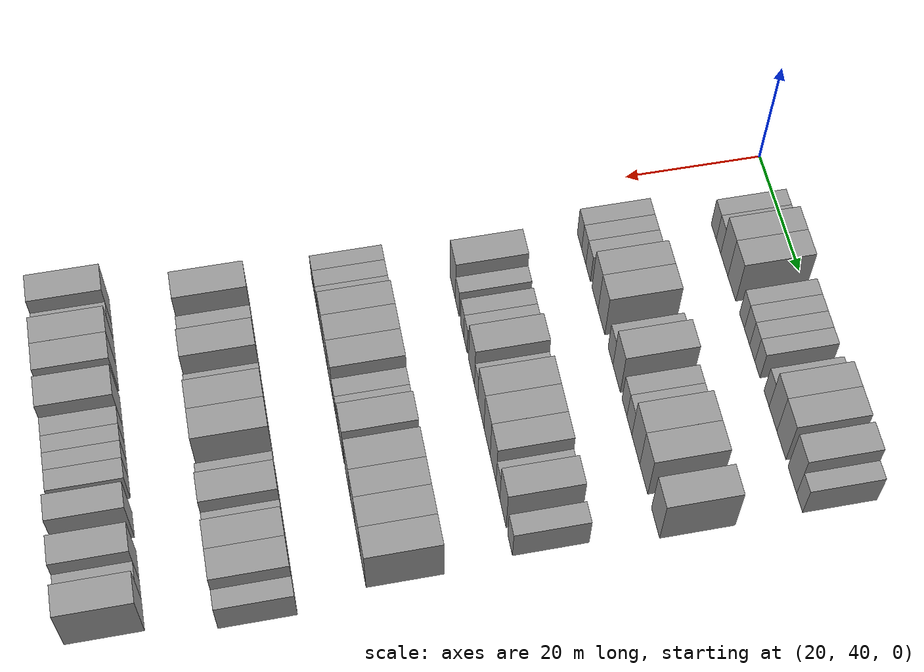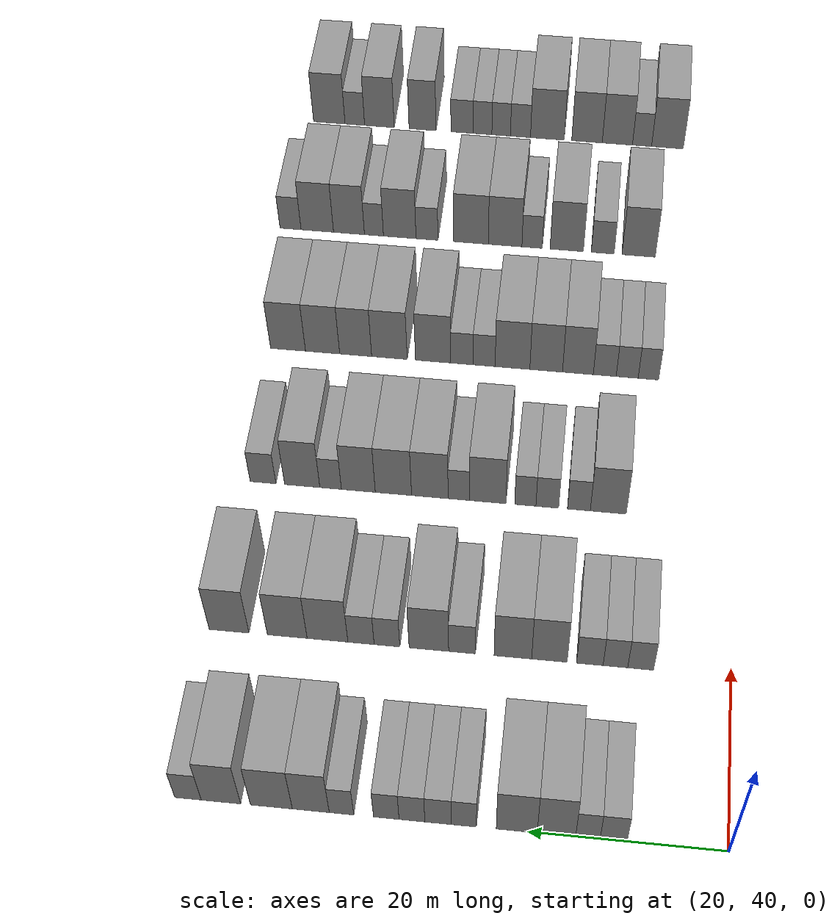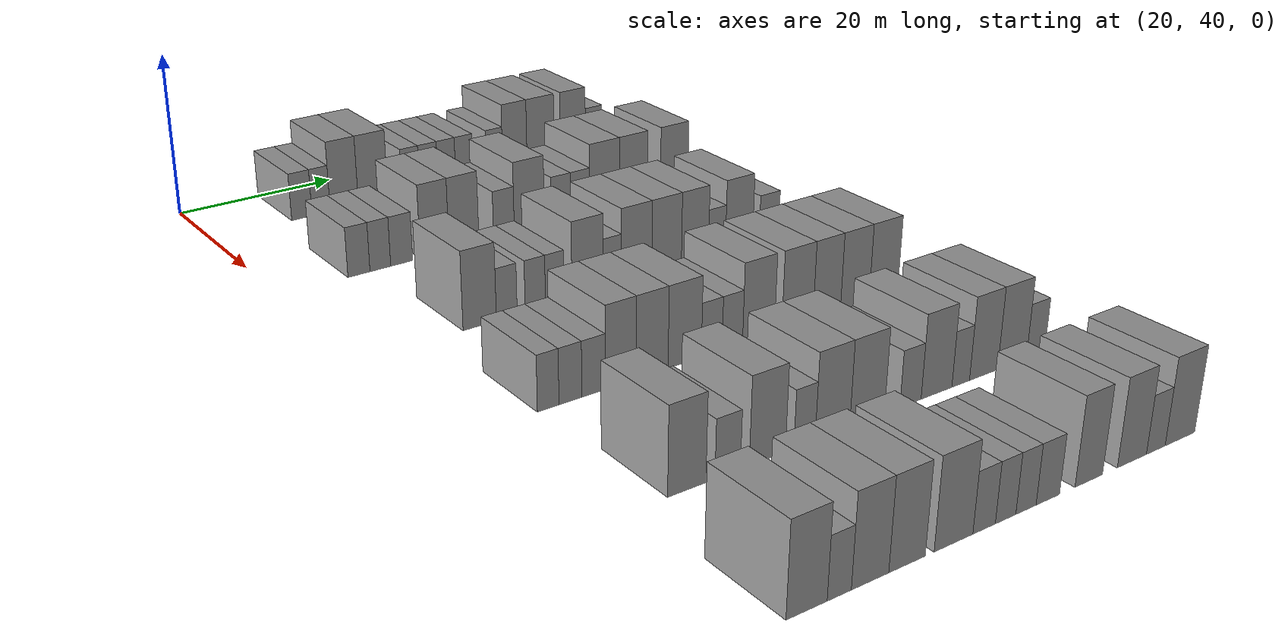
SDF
<sdf version="1.6">
 <world name="default">
  <model name="building_100">
   <static>1</static>
   <pose>25.0000 51.4805 0 0.000000 0.000000 0.000000</pose>
   <link name="link">
    <pose>0 0 3.00 0 0 0</pose>
    <collision name="collision"><geometry><box><size>10.0000 2.6877 6.0000</size></box></geometry></collision>
    <visual name="visual">
     <cast_shadows>0</cast_shadows>
     <geometry><box><size>10.0000 2.6877 6.0000</size></box></geometry>
     <material>
      <script>
       <uri>model://grey_wall/materials/scripts</uri>
       <uri>model://grey_wall/materials/textures</uri>
       <name>vrc/grey_wall</name>
      </script>
     </material>
    </visual>
   </link>
  </model>
  <model name="building_101">
   <static>1</static>
   <pose>25.0000 54.0428 0 0.000000 0.000000 0.000000</pose>
   <link name="link">
    <pose>0 0 3.00 0 0 0</pose>
    <collision name="collision"><geometry><box><size>10.0000 2.4369 6.0000</size></box></geometry></collision>
    <visual name="visual">
     <cast_shadows>0</cast_shadows>
     <geometry><box><size>10.0000 2.4369 6.0000</size></box></geometry>
     <material>
      <script>
       <uri>model://grey_wall/materials/scripts</uri>
       <uri>model://grey_wall/materials/textures</uri>
       <name>vrc/grey_wall</name>
      </script>
     </material>
    </visual>
   </link>
  </model>
  <model name="building_102">
   <static>1</static>
   <pose>25.0000 57.1786 0 0.000000 0.000000 0.000000</pose>
   <link name="link">
    <pose>0 0 4.50 0 0 0</pose>
    <collision name="collision"><geometry><box><size>10.0000 3.8346 9.0000</size></box></geometry></collision>
    <visual name="visual">
     <cast_shadows>0</cast_shadows>
     <geometry><box><size>10.0000 3.8346 9.0000</size></box></geometry>
     <material>
      <script>
       <uri>model://grey_wall/materials/scripts</uri>
       <uri>model://grey_wall/materials/textures</uri>
       <name>vrc/grey_wall</name>
      </script>
     </material>
    </visual>
   </link>
  </model>
  <model name="building_103">
   <static>1</static>
   <pose>25.0000 61.1463 0 0.000000 0.000000 0.000000</pose>
   <link name="link">
    <pose>0 0 4.50 0 0 0</pose>
    <collision name="collision"><geometry><box><size>10.0000 4.1008 9.0000</size></box></geometry></collision>
    <visual name="visual">
     <cast_shadows>0</cast_shadows>
     <geometry><box><size>10.0000 4.1008 9.0000</size></box></geometry>
     <material>
      <script>
       <uri>model://grey_wall/materials/scripts</uri>
       <uri>model://grey_wall/materials/textures</uri>
       <name>vrc/grey_wall</name>
      </script>
     </material>
    </visual>
   </link>
  </model>
  <model name="building_104">
   <static>1</static>
   <pose>25.0000 66.4457 0 0.000000 0.000000 0.000000</pose>
   <link name="link">
    <pose>0 0 3.00 0 0 0</pose>
    <collision name="collision"><geometry><box><size>10.0000 2.4981 6.0000</size></box></geometry></collision>
    <visual name="visual">
     <cast_shadows>0</cast_shadows>
     <geometry><box><size>10.0000 2.4981 6.0000</size></box></geometry>
     <material>
      <script>
       <uri>model://grey_wall/materials/scripts</uri>
       <uri>model://grey_wall/materials/textures</uri>
       <name>vrc/grey_wall</name>
      </script>
     </material>
    </visual>
   </link>
  </model>
  <model name="building_105">
   <static>1</static>
   <pose>25.0000 69.0365 0 0.000000 0.000000 0.000000</pose>
   <link name="link">
    <pose>0 0 3.00 0 0 0</pose>
    <collision name="collision"><geometry><box><size>10.0000 2.6834 6.0000</size></box></geometry></collision>
    <visual name="visual">
     <cast_shadows>0</cast_shadows>
     <geometry><box><size>10.0000 2.6834 6.0000</size></box></geometry>
     <material>
      <script>
       <uri>model://grey_wall/materials/scripts</uri>
       <uri>model://grey_wall/materials/textures</uri>
       <name>vrc/grey_wall</name>
      </script>
     </material>
    </visual>
   </link>
  </model>
  <model name="building_106">
   <static>1</static>
   <pose>25.0000 71.6775 0 0.000000 0.000000 0.000000</pose>
   <link name="link">
    <pose>0 0 3.00 0 0 0</pose>
    <collision name="collision"><geometry><box><size>10.0000 2.5985 6.0000</size></box></geometry></collision>
    <visual name="visual">
     <cast_shadows>0</cast_shadows>
     <geometry><box><size>10.0000 2.5985 6.0000</size></box></geometry>
     <material>
      <script>
       <uri>model://grey_wall/materials/scripts</uri>
       <uri>model://grey_wall/materials/textures</uri>
       <name>vrc/grey_wall</name>
      </script>
     </material>
    </visual>
   </link>
  </model>
  <model name="building_107">
   <static>1</static>
   <pose>25.0000 74.2675 0 0.000000 0.000000 0.000000</pose>
   <link name="link">
    <pose>0 0 3.00 0 0 0</pose>
    <collision name="collision"><geometry><box><size>10.0000 2.5816 6.0000</size></box></geometry></collision>
    <visual name="visual">
     <cast_shadows>0</cast_shadows>
     <geometry><box><size>10.0000 2.5816 6.0000</size></box></geometry>
     <material>
      <script>
       <uri>model://grey_wall/materials/scripts</uri>
       <uri>model://grey_wall/materials/textures</uri>
       <name>vrc/grey_wall</name>
      </script>
     </material>
    </visual>
   </link>
  </model>
  <model name="building_108">
   <static>1</static>
   <pose>25.0000 78.8014 0 0.000000 0.000000 0.000000</pose>
   <link name="link">
    <pose>0 0 3.00 0 0 0</pose>
    <collision name="collision"><geometry><box><size>10.0000 2.4861 6.0000</size></box></geometry></collision>
    <visual name="visual">
     <cast_shadows>0</cast_shadows>
     <geometry><box><size>10.0000 2.4861 6.0000</size></box></geometry>
     <material>
      <script>
       <uri>model://grey_wall/materials/scripts</uri>
       <uri>model://grey_wall/materials/textures</uri>
       <name>vrc/grey_wall</name>
      </script>
     </material>
    </visual>
   </link>
  </model>
  <model name="building_109">
   <static>1</static>
   <pose>25.0000 81.9229 0 0.000000 0.000000 0.000000</pose>
   <link name="link">
    <pose>0 0 4.50 0 0 0</pose>
    <collision name="collision"><geometry><box><size>10.0000 3.7568 9.0000</size></box></geometry></collision>
    <visual name="visual">
     <cast_shadows>0</cast_shadows>
     <geometry><box><size>10.0000 3.7568 9.0000</size></box></geometry>
     <material>
      <script>
       <uri>model://grey_wall/materials/scripts</uri>
       <uri>model://grey_wall/materials/textures</uri>
       <name>vrc/grey_wall</name>
      </script>
     </material>
    </visual>
   </link>
  </model>
  <model name="building_110">
   <static>1</static>
   <pose>25.0000 85.9373 0 0.000000 0.000000 0.000000</pose>
   <link name="link">
    <pose>0 0 4.50 0 0 0</pose>
    <collision name="collision"><geometry><box><size>10.0000 4.2720 9.0000</size></box></geometry></collision>
    <visual name="visual">
     <cast_shadows>0</cast_shadows>
     <geometry><box><size>10.0000 4.2720 9.0000</size></box></geometry>
     <material>
      <script>
       <uri>model://grey_wall/materials/scripts</uri>
       <uri>model://grey_wall/materials/textures</uri>
       <name>vrc/grey_wall</name>
      </script>
     </material>
    </visual>
   </link>
  </model>
  <model name="building_111">
   <static>1</static>
   <pose>25.0000 91.0894 0 0.000000 0.000000 0.000000</pose>
   <link name="link">
    <pose>0 0 4.50 0 0 0</pose>
    <collision name="collision"><geometry><box><size>10.0000 4.0320 9.0000</size></box></geometry></collision>
    <visual name="visual">
     <cast_shadows>0</cast_shadows>
     <geometry><box><size>10.0000 4.0320 9.0000</size></box></geometry>
     <material>
      <script>
       <uri>model://grey_wall/materials/scripts</uri>
       <uri>model://grey_wall/materials/textures</uri>
       <name>vrc/grey_wall</name>
      </script>
     </material>
    </visual>
   </link>
  </model>
  <model name="building_112">
   <static>1</static>
   <pose>25.0000 94.4571 0 0.000000 0.000000 0.000000</pose>
   <link name="link">
    <pose>0 0 3.00 0 0 0</pose>
    <collision name="collision"><geometry><box><size>10.0000 2.7035 6.0000</size></box></geometry></collision>
    <visual name="visual">
     <cast_shadows>0</cast_shadows>
     <geometry><box><size>10.0000 2.7035 6.0000</size></box></geometry>
     <material>
      <script>
       <uri>model://grey_wall/materials/scripts</uri>
       <uri>model://grey_wall/materials/textures</uri>
       <name>vrc/grey_wall</name>
      </script>
     </material>
    </visual>
   </link>
  </model>
  <model name="building_279">
   <static>1</static>
   <pose>44.0000 49.5673 0 0.000000 0.000000 0.000000</pose>
   <link name="link">
    <pose>0 0 3.00 0 0 0</pose>
    <collision name="collision"><geometry><box><size>10.0000 2.7394 6.0000</size></box></geometry></collision>
    <visual name="visual">
     <cast_shadows>0</cast_shadows>
     <geometry><box><size>10.0000 2.7394 6.0000</size></box></geometry>
     <material>
      <script>
       <uri>model://grey_wall/materials/scripts</uri>
       <uri>model://grey_wall/materials/textures</uri>
       <name>vrc/grey_wall</name>
      </script>
     </material>
    </visual>
   </link>
  </model>
  <model name="building_280">
   <static>1</static>
   <pose>44.0000 52.2454 0 0.000000 0.000000 0.000000</pose>
   <link name="link">
    <pose>0 0 3.00 0 0 0</pose>
    <collision name="collision"><geometry><box><size>10.0000 2.6169 6.0000</size></box></geometry></collision>
    <visual name="visual">
     <cast_shadows>0</cast_shadows>
     <geometry><box><size>10.0000 2.6169 6.0000</size></box></geometry>
     <material>
      <script>
       <uri>model://grey_wall/materials/scripts</uri>
       <uri>model://grey_wall/materials/textures</uri>
       <name>vrc/grey_wall</name>
      </script>
     </material>
    </visual>
   </link>
  </model>
  <model name="building_281">
   <static>1</static>
   <pose>44.0000 54.9629 0 0.000000 0.000000 0.000000</pose>
   <link name="link">
    <pose>0 0 3.00 0 0 0</pose>
    <collision name="collision"><geometry><box><size>10.0000 2.8182 6.0000</size></box></geometry></collision>
    <visual name="visual">
     <cast_shadows>0</cast_shadows>
     <geometry><box><size>10.0000 2.8182 6.0000</size></box></geometry>
     <material>
      <script>
       <uri>model://grey_wall/materials/scripts</uri>
       <uri>model://grey_wall/materials/textures</uri>
       <name>vrc/grey_wall</name>
      </script>
     </material>
    </visual>
   </link>
  </model>
  <model name="building_282">
   <static>1</static>
   <pose>44.0000 59.2622 0 0.000000 0.000000 0.000000</pose>
   <link name="link">
    <pose>0 0 4.50 0 0 0</pose>
    <collision name="collision"><geometry><box><size>10.0000 3.7804 9.0000</size></box></geometry></collision>
    <visual name="visual">
     <cast_shadows>0</cast_shadows>
     <geometry><box><size>10.0000 3.7804 9.0000</size></box></geometry>
     <material>
      <script>
       <uri>model://grey_wall/materials/scripts</uri>
       <uri>model://grey_wall/materials/textures</uri>
       <name>vrc/grey_wall</name>
      </script>
     </material>
    </visual>
   </link>
  </model>
  <model name="building_283">
   <static>1</static>
   <pose>44.0000 63.1566 0 0.000000 0.000000 0.000000</pose>
   <link name="link">
    <pose>0 0 4.50 0 0 0</pose>
    <collision name="collision"><geometry><box><size>10.0000 4.0084 9.0000</size></box></geometry></collision>
    <visual name="visual">
     <cast_shadows>0</cast_shadows>
     <geometry><box><size>10.0000 4.0084 9.0000</size></box></geometry>
     <material>
      <script>
       <uri>model://grey_wall/materials/scripts</uri>
       <uri>model://grey_wall/materials/textures</uri>
       <name>vrc/grey_wall</name>
      </script>
     </material>
    </visual>
   </link>
  </model>
  <model name="building_284">
   <static>1</static>
   <pose>44.0000 68.5951 0 0.000000 0.000000 0.000000</pose>
   <link name="link">
    <pose>0 0 3.00 0 0 0</pose>
    <collision name="collision"><geometry><box><size>10.0000 2.8685 6.0000</size></box></geometry></collision>
    <visual name="visual">
     <cast_shadows>0</cast_shadows>
     <geometry><box><size>10.0000 2.8685 6.0000</size></box></geometry>
     <material>
      <script>
       <uri>model://grey_wall/materials/scripts</uri>
       <uri>model://grey_wall/materials/textures</uri>
       <name>vrc/grey_wall</name>
      </script>
     </material>
    </visual>
   </link>
  </model>
  <model name="building_285">
   <static>1</static>
   <pose>44.0000 72.1524 0 0.000000 0.000000 0.000000</pose>
   <link name="link">
    <pose>0 0 4.50 0 0 0</pose>
    <collision name="collision"><geometry><box><size>10.0000 4.2460 9.0000</size></box></geometry></collision>
    <visual name="visual">
     <cast_shadows>0</cast_shadows>
     <geometry><box><size>10.0000 4.2460 9.0000</size></box></geometry>
     <material>
      <script>
       <uri>model://grey_wall/materials/scripts</uri>
       <uri>model://grey_wall/materials/textures</uri>
       <name>vrc/grey_wall</name>
      </script>
     </material>
    </visual>
   </link>
  </model>
  <model name="building_286">
   <static>1</static>
   <pose>44.0000 76.6606 0 0.000000 0.000000 0.000000</pose>
   <link name="link">
    <pose>0 0 3.00 0 0 0</pose>
    <collision name="collision"><geometry><box><size>10.0000 2.7705 6.0000</size></box></geometry></collision>
    <visual name="visual">
     <cast_shadows>0</cast_shadows>
     <geometry><box><size>10.0000 2.7705 6.0000</size></box></geometry>
     <material>
      <script>
       <uri>model://grey_wall/materials/scripts</uri>
       <uri>model://grey_wall/materials/textures</uri>
       <name>vrc/grey_wall</name>
      </script>
     </material>
    </visual>
   </link>
  </model>
  <model name="building_287">
   <static>1</static>
   <pose>44.0000 79.4630 0 0.000000 0.000000 0.000000</pose>
   <link name="link">
    <pose>0 0 3.00 0 0 0</pose>
    <collision name="collision"><geometry><box><size>10.0000 2.8343 6.0000</size></box></geometry></collision>
    <visual name="visual">
     <cast_shadows>0</cast_shadows>
     <geometry><box><size>10.0000 2.8343 6.0000</size></box></geometry>
     <material>
      <script>
       <uri>model://grey_wall/materials/scripts</uri>
       <uri>model://grey_wall/materials/textures</uri>
       <name>vrc/grey_wall</name>
      </script>
     </material>
    </visual>
   </link>
  </model>
  <model name="building_288">
   <static>1</static>
   <pose>44.0000 83.0851 0 0.000000 0.000000 0.000000</pose>
   <link name="link">
    <pose>0 0 4.50 0 0 0</pose>
    <collision name="collision"><geometry><box><size>10.0000 4.4100 9.0000</size></box></geometry></collision>
    <visual name="visual">
     <cast_shadows>0</cast_shadows>
     <geometry><box><size>10.0000 4.4100 9.0000</size></box></geometry>
     <material>
      <script>
       <uri>model://grey_wall/materials/scripts</uri>
       <uri>model://grey_wall/materials/textures</uri>
       <name>vrc/grey_wall</name>
      </script>
     </material>
    </visual>
   </link>
  </model>
  <model name="building_289">
   <static>1</static>
   <pose>44.0000 87.4494 0 0.000000 0.000000 0.000000</pose>
   <link name="link">
    <pose>0 0 4.50 0 0 0</pose>
    <collision name="collision"><geometry><box><size>10.0000 4.3185 9.0000</size></box></geometry></collision>
    <visual name="visual">
     <cast_shadows>0</cast_shadows>
     <geometry><box><size>10.0000 4.3185 9.0000</size></box></geometry>
     <material>
      <script>
       <uri>model://grey_wall/materials/scripts</uri>
       <uri>model://grey_wall/materials/textures</uri>
       <name>vrc/grey_wall</name>
      </script>
     </material>
    </visual>
   </link>
  </model>
  <model name="building_290">
   <static>1</static>
   <pose>44.0000 93.7740 0 0.000000 0.000000 0.000000</pose>
   <link name="link">
    <pose>0 0 4.50 0 0 0</pose>
    <collision name="collision"><geometry><box><size>10.0000 4.3306 9.0000</size></box></geometry></collision>
    <visual name="visual">
     <cast_shadows>0</cast_shadows>
     <geometry><box><size>10.0000 4.3306 9.0000</size></box></geometry>
     <material>
      <script>
       <uri>model://grey_wall/materials/scripts</uri>
       <uri>model://grey_wall/materials/textures</uri>
       <name>vrc/grey_wall</name>
      </script>
     </material>
    </visual>
   </link>
  </model>
  <model name="building_454">
   <static>1</static>
   <pose>63.0000 53.9962 0 0.000000 0.000000 0.000000</pose>
   <link name="link">
    <pose>0 0 4.50 0 0 0</pose>
    <collision name="collision"><geometry><box><size>10.0000 4.0564 9.0000</size></box></geometry></collision>
    <visual name="visual">
     <cast_shadows>0</cast_shadows>
     <geometry><box><size>10.0000 4.0564 9.0000</size></box></geometry>
     <material>
      <script>
       <uri>model://grey_wall/materials/scripts</uri>
       <uri>model://grey_wall/materials/textures</uri>
       <name>vrc/grey_wall</name>
      </script>
     </material>
    </visual>
   </link>
  </model>
  <model name="building_455">
   <static>1</static>
   <pose>63.0000 57.3100 0 0.000000 0.000000 0.000000</pose>
   <link name="link">
    <pose>0 0 3.00 0 0 0</pose>
    <collision name="collision"><geometry><box><size>10.0000 2.5714 6.0000</size></box></geometry></collision>
    <visual name="visual">
     <cast_shadows>0</cast_shadows>
     <geometry><box><size>10.0000 2.5714 6.0000</size></box></geometry>
     <material>
      <script>
       <uri>model://grey_wall/materials/scripts</uri>
       <uri>model://grey_wall/materials/textures</uri>
       <name>vrc/grey_wall</name>
      </script>
     </material>
    </visual>
   </link>
  </model>
  <model name="building_456">
   <static>1</static>
   <pose>63.0000 60.8809 0 0.000000 0.000000 0.000000</pose>
   <link name="link">
    <pose>0 0 3.00 0 0 0</pose>
    <collision name="collision"><geometry><box><size>10.0000 2.5704 6.0000</size></box></geometry></collision>
    <visual name="visual">
     <cast_shadows>0</cast_shadows>
     <geometry><box><size>10.0000 2.5704 6.0000</size></box></geometry>
     <material>
      <script>
       <uri>model://grey_wall/materials/scripts</uri>
       <uri>model://grey_wall/materials/textures</uri>
       <name>vrc/grey_wall</name>
      </script>
     </material>
    </visual>
   </link>
  </model>
  <model name="building_457">
   <static>1</static>
   <pose>63.0000 63.3690 0 0.000000 0.000000 0.000000</pose>
   <link name="link">
    <pose>0 0 3.00 0 0 0</pose>
    <collision name="collision"><geometry><box><size>10.0000 2.4057 6.0000</size></box></geometry></collision>
    <visual name="visual">
     <cast_shadows>0</cast_shadows>
     <geometry><box><size>10.0000 2.4057 6.0000</size></box></geometry>
     <material>
      <script>
       <uri>model://grey_wall/materials/scripts</uri>
       <uri>model://grey_wall/materials/textures</uri>
       <name>vrc/grey_wall</name>
      </script>
     </material>
    </visual>
   </link>
  </model>
  <model name="building_458">
   <static>1</static>
   <pose>63.0000 67.6503 0 0.000000 0.000000 0.000000</pose>
   <link name="link">
    <pose>0 0 4.50 0 0 0</pose>
    <collision name="collision"><geometry><box><size>10.0000 4.1570 9.0000</size></box></geometry></collision>
    <visual name="visual">
     <cast_shadows>0</cast_shadows>
     <geometry><box><size>10.0000 4.1570 9.0000</size></box></geometry>
     <material>
      <script>
       <uri>model://grey_wall/materials/scripts</uri>
       <uri>model://grey_wall/materials/textures</uri>
       <name>vrc/grey_wall</name>
      </script>
     </material>
    </visual>
   </link>
  </model>
  <model name="building_459">
   <static>1</static>
   <pose>63.0000 70.9305 0 0.000000 0.000000 0.000000</pose>
   <link name="link">
    <pose>0 0 3.00 0 0 0</pose>
    <collision name="collision"><geometry><box><size>10.0000 2.4033 6.0000</size></box></geometry></collision>
    <visual name="visual">
     <cast_shadows>0</cast_shadows>
     <geometry><box><size>10.0000 2.4033 6.0000</size></box></geometry>
     <material>
      <script>
       <uri>model://grey_wall/materials/scripts</uri>
       <uri>model://grey_wall/materials/textures</uri>
       <name>vrc/grey_wall</name>
      </script>
     </material>
    </visual>
   </link>
  </model>
  <model name="building_460">
   <static>1</static>
   <pose>63.0000 74.2197 0 0.000000 0.000000 0.000000</pose>
   <link name="link">
    <pose>0 0 4.50 0 0 0</pose>
    <collision name="collision"><geometry><box><size>10.0000 4.1751 9.0000</size></box></geometry></collision>
    <visual name="visual">
     <cast_shadows>0</cast_shadows>
     <geometry><box><size>10.0000 4.1751 9.0000</size></box></geometry>
     <material>
      <script>
       <uri>model://grey_wall/materials/scripts</uri>
       <uri>model://grey_wall/materials/textures</uri>
       <name>vrc/grey_wall</name>
      </script>
     </material>
    </visual>
   </link>
  </model>
  <model name="building_461">
   <static>1</static>
   <pose>63.0000 78.3830 0 0.000000 0.000000 0.000000</pose>
   <link name="link">
    <pose>0 0 4.50 0 0 0</pose>
    <collision name="collision"><geometry><box><size>10.0000 4.1514 9.0000</size></box></geometry></collision>
    <visual name="visual">
     <cast_shadows>0</cast_shadows>
     <geometry><box><size>10.0000 4.1514 9.0000</size></box></geometry>
     <material>
      <script>
       <uri>model://grey_wall/materials/scripts</uri>
       <uri>model://grey_wall/materials/textures</uri>
       <name>vrc/grey_wall</name>
      </script>
     </material>
    </visual>
   </link>
  </model>
  <model name="building_462">
   <static>1</static>
   <pose>63.0000 82.4024 0 0.000000 0.000000 0.000000</pose>
   <link name="link">
    <pose>0 0 4.50 0 0 0</pose>
    <collision name="collision"><geometry><box><size>10.0000 3.8875 9.0000</size></box></geometry></collision>
    <visual name="visual">
     <cast_shadows>0</cast_shadows>
     <geometry><box><size>10.0000 3.8875 9.0000</size></box></geometry>
     <material>
      <script>
       <uri>model://grey_wall/materials/scripts</uri>
       <uri>model://grey_wall/materials/textures</uri>
       <name>vrc/grey_wall</name>
      </script>
     </material>
    </visual>
   </link>
  </model>
  <model name="building_463">
   <static>1</static>
   <pose>63.0000 85.5853 0 0.000000 0.000000 0.000000</pose>
   <link name="link">
    <pose>0 0 3.00 0 0 0</pose>
    <collision name="collision"><geometry><box><size>10.0000 2.4783 6.0000</size></box></geometry></collision>
    <visual name="visual">
     <cast_shadows>0</cast_shadows>
     <geometry><box><size>10.0000 2.4783 6.0000</size></box></geometry>
     <material>
      <script>
       <uri>model://grey_wall/materials/scripts</uri>
       <uri>model://grey_wall/materials/textures</uri>
       <name>vrc/grey_wall</name>
      </script>
     </material>
    </visual>
   </link>
  </model>
  <model name="building_464">
   <static>1</static>
   <pose>63.0000 88.8524 0 0.000000 0.000000 0.000000</pose>
   <link name="link">
    <pose>0 0 4.50 0 0 0</pose>
    <collision name="collision"><geometry><box><size>10.0000 4.0561 9.0000</size></box></geometry></collision>
    <visual name="visual">
     <cast_shadows>0</cast_shadows>
     <geometry><box><size>10.0000 4.0561 9.0000</size></box></geometry>
     <material>
      <script>
       <uri>model://grey_wall/materials/scripts</uri>
       <uri>model://grey_wall/materials/textures</uri>
       <name>vrc/grey_wall</name>
      </script>
     </material>
    </visual>
   </link>
  </model>
  <model name="building_465">
   <static>1</static>
   <pose>63.0000 93.3658 0 0.000000 0.000000 0.000000</pose>
   <link name="link">
    <pose>0 0 3.00 0 0 0</pose>
    <collision name="collision"><geometry><box><size>10.0000 2.9708 6.0000</size></box></geometry></collision>
    <visual name="visual">
     <cast_shadows>0</cast_shadows>
     <geometry><box><size>10.0000 2.9708 6.0000</size></box></geometry>
     <material>
      <script>
       <uri>model://grey_wall/materials/scripts</uri>
       <uri>model://grey_wall/materials/textures</uri>
       <name>vrc/grey_wall</name>
      </script>
     </material>
    </visual>
   </link>
  </model>
  <model name="building_624">
   <static>1</static>
   <pose>82.0000 50.2075 0 0.000000 0.000000 0.000000</pose>
   <link name="link">
    <pose>0 0 3.00 0 0 0</pose>
    <collision name="collision"><geometry><box><size>10.0000 2.4330 6.0000</size></box></geometry></collision>
    <visual name="visual">
     <cast_shadows>0</cast_shadows>
     <geometry><box><size>10.0000 2.4330 6.0000</size></box></geometry>
     <material>
      <script>
       <uri>model://grey_wall/materials/scripts</uri>
       <uri>model://grey_wall/materials/textures</uri>
       <name>vrc/grey_wall</name>
      </script>
     </material>
    </visual>
   </link>
  </model>
  <model name="building_625">
   <static>1</static>
   <pose>82.0000 52.7319 0 0.000000 0.000000 0.000000</pose>
   <link name="link">
    <pose>0 0 3.00 0 0 0</pose>
    <collision name="collision"><geometry><box><size>10.0000 2.6159 6.0000</size></box></geometry></collision>
    <visual name="visual">
     <cast_shadows>0</cast_shadows>
     <geometry><box><size>10.0000 2.6159 6.0000</size></box></geometry>
     <material>
      <script>
       <uri>model://grey_wall/materials/scripts</uri>
       <uri>model://grey_wall/materials/textures</uri>
       <name>vrc/grey_wall</name>
      </script>
     </material>
    </visual>
   </link>
  </model>
  <model name="building_626">
   <static>1</static>
   <pose>82.0000 55.4061 0 0.000000 0.000000 0.000000</pose>
   <link name="link">
    <pose>0 0 3.00 0 0 0</pose>
    <collision name="collision"><geometry><box><size>10.0000 2.7324 6.0000</size></box></geometry></collision>
    <visual name="visual">
     <cast_shadows>0</cast_shadows>
     <geometry><box><size>10.0000 2.7324 6.0000</size></box></geometry>
     <material>
      <script>
       <uri>model://grey_wall/materials/scripts</uri>
       <uri>model://grey_wall/materials/textures</uri>
       <name>vrc/grey_wall</name>
      </script>
     </material>
    </visual>
   </link>
  </model>
  <model name="building_627">
   <static>1</static>
   <pose>82.0000 58.6127 0 0.000000 0.000000 0.000000</pose>
   <link name="link">
    <pose>0 0 4.50 0 0 0</pose>
    <collision name="collision"><geometry><box><size>10.0000 3.6809 9.0000</size></box></geometry></collision>
    <visual name="visual">
     <cast_shadows>0</cast_shadows>
     <geometry><box><size>10.0000 3.6809 9.0000</size></box></geometry>
     <material>
      <script>
       <uri>model://grey_wall/materials/scripts</uri>
       <uri>model://grey_wall/materials/textures</uri>
       <name>vrc/grey_wall</name>
      </script>
     </material>
    </visual>
   </link>
  </model>
  <model name="building_628">
   <static>1</static>
   <pose>82.0000 62.4074 0 0.000000 0.000000 0.000000</pose>
   <link name="link">
    <pose>0 0 4.50 0 0 0</pose>
    <collision name="collision"><geometry><box><size>10.0000 3.9086 9.0000</size></box></geometry></collision>
    <visual name="visual">
     <cast_shadows>0</cast_shadows>
     <geometry><box><size>10.0000 3.9086 9.0000</size></box></geometry>
     <material>
      <script>
       <uri>model://grey_wall/materials/scripts</uri>
       <uri>model://grey_wall/materials/textures</uri>
       <name>vrc/grey_wall</name>
      </script>
     </material>
    </visual>
   </link>
  </model>
  <model name="building_629">
   <static>1</static>
   <pose>82.0000 66.4455 0 0.000000 0.000000 0.000000</pose>
   <link name="link">
    <pose>0 0 4.50 0 0 0</pose>
    <collision name="collision"><geometry><box><size>10.0000 4.1675 9.0000</size></box></geometry></collision>
    <visual name="visual">
     <cast_shadows>0</cast_shadows>
     <geometry><box><size>10.0000 4.1675 9.0000</size></box></geometry>
     <material>
      <script>
       <uri>model://grey_wall/materials/scripts</uri>
       <uri>model://grey_wall/materials/textures</uri>
       <name>vrc/grey_wall</name>
      </script>
     </material>
    </visual>
   </link>
  </model>
  <model name="building_630">
   <static>1</static>
   <pose>82.0000 69.8633 0 0.000000 0.000000 0.000000</pose>
   <link name="link">
    <pose>0 0 3.00 0 0 0</pose>
    <collision name="collision"><geometry><box><size>10.0000 2.6681 6.0000</size></box></geometry></collision>
    <visual name="visual">
     <cast_shadows>0</cast_shadows>
     <geometry><box><size>10.0000 2.6681 6.0000</size></box></geometry>
     <material>
      <script>
       <uri>model://grey_wall/materials/scripts</uri>
       <uri>model://grey_wall/materials/textures</uri>
       <name>vrc/grey_wall</name>
      </script>
     </material>
    </visual>
   </link>
  </model>
  <model name="building_631">
   <static>1</static>
   <pose>82.0000 72.5353 0 0.000000 0.000000 0.000000</pose>
   <link name="link">
    <pose>0 0 3.00 0 0 0</pose>
    <collision name="collision"><geometry><box><size>10.0000 2.6759 6.0000</size></box></geometry></collision>
    <visual name="visual">
     <cast_shadows>0</cast_shadows>
     <geometry><box><size>10.0000 2.6759 6.0000</size></box></geometry>
     <material>
      <script>
       <uri>model://grey_wall/materials/scripts</uri>
       <uri>model://grey_wall/materials/textures</uri>
       <name>vrc/grey_wall</name>
      </script>
     </material>
    </visual>
   </link>
  </model>
  <model name="building_632">
   <static>1</static>
   <pose>82.0000 75.9998 0 0.000000 0.000000 0.000000</pose>
   <link name="link">
    <pose>0 0 4.50 0 0 0</pose>
    <collision name="collision"><geometry><box><size>10.0000 4.2531 9.0000</size></box></geometry></collision>
    <visual name="visual">
     <cast_shadows>0</cast_shadows>
     <geometry><box><size>10.0000 4.2531 9.0000</size></box></geometry>
     <material>
      <script>
       <uri>model://grey_wall/materials/scripts</uri>
       <uri>model://grey_wall/materials/textures</uri>
       <name>vrc/grey_wall</name>
      </script>
     </material>
    </visual>
   </link>
  </model>
  <model name="building_633">
   <static>1</static>
   <pose>82.0000 81.2829 0 0.000000 0.000000 0.000000</pose>
   <link name="link">
    <pose>0 0 4.50 0 0 0</pose>
    <collision name="collision"><geometry><box><size>10.0000 4.3130 9.0000</size></box></geometry></collision>
    <visual name="visual">
     <cast_shadows>0</cast_shadows>
     <geometry><box><size>10.0000 4.3130 9.0000</size></box></geometry>
     <material>
      <script>
       <uri>model://grey_wall/materials/scripts</uri>
       <uri>model://grey_wall/materials/textures</uri>
       <name>vrc/grey_wall</name>
      </script>
     </material>
    </visual>
   </link>
  </model>
  <model name="building_634">
   <static>1</static>
   <pose>82.0000 85.3814 0 0.000000 0.000000 0.000000</pose>
   <link name="link">
    <pose>0 0 4.50 0 0 0</pose>
    <collision name="collision"><geometry><box><size>10.0000 3.8842 9.0000</size></box></geometry></collision>
    <visual name="visual">
     <cast_shadows>0</cast_shadows>
     <geometry><box><size>10.0000 3.8842 9.0000</size></box></geometry>
     <material>
      <script>
       <uri>model://grey_wall/materials/scripts</uri>
       <uri>model://grey_wall/materials/textures</uri>
       <name>vrc/grey_wall</name>
      </script>
     </material>
    </visual>
   </link>
  </model>
  <model name="building_635">
   <static>1</static>
   <pose>82.0000 89.4037 0 0.000000 0.000000 0.000000</pose>
   <link name="link">
    <pose>0 0 4.50 0 0 0</pose>
    <collision name="collision"><geometry><box><size>10.0000 4.1604 9.0000</size></box></geometry></collision>
    <visual name="visual">
     <cast_shadows>0</cast_shadows>
     <geometry><box><size>10.0000 4.1604 9.0000</size></box></geometry>
     <material>
      <script>
       <uri>model://grey_wall/materials/scripts</uri>
       <uri>model://grey_wall/materials/textures</uri>
       <name>vrc/grey_wall</name>
      </script>
     </material>
    </visual>
   </link>
  </model>
  <model name="building_636">
   <static>1</static>
   <pose>82.0000 93.6115 0 0.000000 0.000000 0.000000</pose>
   <link name="link">
    <pose>0 0 4.50 0 0 0</pose>
    <collision name="collision"><geometry><box><size>10.0000 4.2551 9.0000</size></box></geometry></collision>
    <visual name="visual">
     <cast_shadows>0</cast_shadows>
     <geometry><box><size>10.0000 4.2551 9.0000</size></box></geometry>
     <material>
      <script>
       <uri>model://grey_wall/materials/scripts</uri>
       <uri>model://grey_wall/materials/textures</uri>
       <name>vrc/grey_wall</name>
      </script>
     </material>
    </visual>
   </link>
  </model>
  <model name="building_807">
   <static>1</static>
   <pose>101.0000 52.1614 0 0.000000 0.000000 0.000000</pose>
   <link name="link">
    <pose>0 0 4.50 0 0 0</pose>
    <collision name="collision"><geometry><box><size>10.0000 4.1678 9.0000</size></box></geometry></collision>
    <visual name="visual">
     <cast_shadows>0</cast_shadows>
     <geometry><box><size>10.0000 4.1678 9.0000</size></box></geometry>
     <material>
      <script>
       <uri>model://grey_wall/materials/scripts</uri>
       <uri>model://grey_wall/materials/textures</uri>
       <name>vrc/grey_wall</name>
      </script>
     </material>
    </visual>
   </link>
  </model>
  <model name="building_808">
   <static>1</static>
   <pose>101.0000 56.6790 0 0.000000 0.000000 0.000000</pose>
   <link name="link">
    <pose>0 0 3.00 0 0 0</pose>
    <collision name="collision"><geometry><box><size>10.0000 2.8674 6.0000</size></box></geometry></collision>
    <visual name="visual">
     <cast_shadows>0</cast_shadows>
     <geometry><box><size>10.0000 2.8674 6.0000</size></box></geometry>
     <material>
      <script>
       <uri>model://grey_wall/materials/scripts</uri>
       <uri>model://grey_wall/materials/textures</uri>
       <name>vrc/grey_wall</name>
      </script>
     </material>
    </visual>
   </link>
  </model>
  <model name="building_809">
   <static>1</static>
   <pose>101.0000 61.2128 0 0.000000 0.000000 0.000000</pose>
   <link name="link">
    <pose>0 0 4.50 0 0 0</pose>
    <collision name="collision"><geometry><box><size>10.0000 4.2002 9.0000</size></box></geometry></collision>
    <visual name="visual">
     <cast_shadows>0</cast_shadows>
     <geometry><box><size>10.0000 4.2002 9.0000</size></box></geometry>
     <material>
      <script>
       <uri>model://grey_wall/materials/scripts</uri>
       <uri>model://grey_wall/materials/textures</uri>
       <name>vrc/grey_wall</name>
      </script>
     </material>
    </visual>
   </link>
  </model>
  <model name="building_810">
   <static>1</static>
   <pose>101.0000 65.5942 0 0.000000 0.000000 0.000000</pose>
   <link name="link">
    <pose>0 0 3.00 0 0 0</pose>
    <collision name="collision"><geometry><box><size>10.0000 2.5627 6.0000</size></box></geometry></collision>
    <visual name="visual">
     <cast_shadows>0</cast_shadows>
     <geometry><box><size>10.0000 2.5627 6.0000</size></box></geometry>
     <material>
      <script>
       <uri>model://grey_wall/materials/scripts</uri>
       <uri>model://grey_wall/materials/textures</uri>
       <name>vrc/grey_wall</name>
      </script>
     </material>
    </visual>
   </link>
  </model>
  <model name="building_811">
   <static>1</static>
   <pose>101.0000 69.0007 0 0.000000 0.000000 0.000000</pose>
   <link name="link">
    <pose>0 0 4.50 0 0 0</pose>
    <collision name="collision"><geometry><box><size>10.0000 4.2502 9.0000</size></box></geometry></collision>
    <visual name="visual">
     <cast_shadows>0</cast_shadows>
     <geometry><box><size>10.0000 4.2502 9.0000</size></box></geometry>
     <material>
      <script>
       <uri>model://grey_wall/materials/scripts</uri>
       <uri>model://grey_wall/materials/textures</uri>
       <name>vrc/grey_wall</name>
      </script>
     </material>
    </visual>
   </link>
  </model>
  <model name="building_812">
   <static>1</static>
   <pose>101.0000 73.3295 0 0.000000 0.000000 0.000000</pose>
   <link name="link">
    <pose>0 0 4.50 0 0 0</pose>
    <collision name="collision"><geometry><box><size>10.0000 4.4074 9.0000</size></box></geometry></collision>
    <visual name="visual">
     <cast_shadows>0</cast_shadows>
     <geometry><box><size>10.0000 4.4074 9.0000</size></box></geometry>
     <material>
      <script>
       <uri>model://grey_wall/materials/scripts</uri>
       <uri>model://grey_wall/materials/textures</uri>
       <name>vrc/grey_wall</name>
      </script>
     </material>
    </visual>
   </link>
  </model>
  <model name="building_813">
   <static>1</static>
   <pose>101.0000 78.9346 0 0.000000 0.000000 0.000000</pose>
   <link name="link">
    <pose>0 0 3.00 0 0 0</pose>
    <collision name="collision"><geometry><box><size>10.0000 2.8027 6.0000</size></box></geometry></collision>
    <visual name="visual">
     <cast_shadows>0</cast_shadows>
     <geometry><box><size>10.0000 2.8027 6.0000</size></box></geometry>
     <material>
      <script>
       <uri>model://grey_wall/materials/scripts</uri>
       <uri>model://grey_wall/materials/textures</uri>
       <name>vrc/grey_wall</name>
      </script>
     </material>
    </visual>
   </link>
  </model>
  <model name="building_814">
   <static>1</static>
   <pose>101.0000 82.4153 0 0.000000 0.000000 0.000000</pose>
   <link name="link">
    <pose>0 0 4.50 0 0 0</pose>
    <collision name="collision"><geometry><box><size>10.0000 4.1587 9.0000</size></box></geometry></collision>
    <visual name="visual">
     <cast_shadows>0</cast_shadows>
     <geometry><box><size>10.0000 4.1587 9.0000</size></box></geometry>
     <material>
      <script>
       <uri>model://grey_wall/materials/scripts</uri>
       <uri>model://grey_wall/materials/textures</uri>
       <name>vrc/grey_wall</name>
      </script>
     </material>
    </visual>
   </link>
  </model>
  <model name="building_815">
   <static>1</static>
   <pose>101.0000 85.7117 0 0.000000 0.000000 0.000000</pose>
   <link name="link">
    <pose>0 0 3.00 0 0 0</pose>
    <collision name="collision"><geometry><box><size>10.0000 2.4341 6.0000</size></box></geometry></collision>
    <visual name="visual">
     <cast_shadows>0</cast_shadows>
     <geometry><box><size>10.0000 2.4341 6.0000</size></box></geometry>
     <material>
      <script>
       <uri>model://grey_wall/materials/scripts</uri>
       <uri>model://grey_wall/materials/textures</uri>
       <name>vrc/grey_wall</name>
      </script>
     </material>
    </visual>
   </link>
  </model>
  <model name="building_816">
   <static>1</static>
   <pose>101.0000 88.9096 0 0.000000 0.000000 0.000000</pose>
   <link name="link">
    <pose>0 0 4.50 0 0 0</pose>
    <collision name="collision"><geometry><box><size>10.0000 3.9616 9.0000</size></box></geometry></collision>
    <visual name="visual">
     <cast_shadows>0</cast_shadows>
     <geometry><box><size>10.0000 3.9616 9.0000</size></box></geometry>
     <material>
      <script>
       <uri>model://grey_wall/materials/scripts</uri>
       <uri>model://grey_wall/materials/textures</uri>
       <name>vrc/grey_wall</name>
      </script>
     </material>
    </visual>
   </link>
  </model>
  <model name="building_817">
   <static>1</static>
   <pose>101.0000 92.9755 0 0.000000 0.000000 0.000000</pose>
   <link name="link">
    <pose>0 0 4.50 0 0 0</pose>
    <collision name="collision"><geometry><box><size>10.0000 4.1702 9.0000</size></box></geometry></collision>
    <visual name="visual">
     <cast_shadows>0</cast_shadows>
     <geometry><box><size>10.0000 4.1702 9.0000</size></box></geometry>
     <material>
      <script>
       <uri>model://grey_wall/materials/scripts</uri>
       <uri>model://grey_wall/materials/textures</uri>
       <name>vrc/grey_wall</name>
      </script>
     </material>
    </visual>
   </link>
  </model>
  <model name="building_818">
   <static>1</static>
   <pose>101.0000 96.4125 0 0.000000 0.000000 0.000000</pose>
   <link name="link">
    <pose>0 0 3.00 0 0 0</pose>
    <collision name="collision"><geometry><box><size>10.0000 2.7037 6.0000</size></box></geometry></collision>
    <visual name="visual">
     <cast_shadows>0</cast_shadows>
     <geometry><box><size>10.0000 2.7037 6.0000</size></box></geometry>
     <material>
      <script>
       <uri>model://grey_wall/materials/scripts</uri>
       <uri>model://grey_wall/materials/textures</uri>
       <name>vrc/grey_wall</name>
      </script>
     </material>
    </visual>
   </link>
  </model>
  <model name="building_976">
   <static>1</static>
   <pose>120.0000 49.1543 0 0.000000 0.000000 0.000000</pose>
   <link name="link">
    <pose>0 0 4.50 0 0 0</pose>
    <collision name="collision"><geometry><box><size>10.0000 4.1777 9.0000</size></box></geometry></collision>
    <visual name="visual">
     <cast_shadows>0</cast_shadows>
     <geometry><box><size>10.0000 4.1777 9.0000</size></box></geometry>
     <material>
      <script>
       <uri>model://grey_wall/materials/scripts</uri>
       <uri>model://grey_wall/materials/textures</uri>
       <name>vrc/grey_wall</name>
      </script>
     </material>
    </visual>
   </link>
  </model>
  <model name="building_977">
   <static>1</static>
   <pose>120.0000 52.5047 0 0.000000 0.000000 0.000000</pose>
   <link name="link">
    <pose>0 0 3.00 0 0 0</pose>
    <collision name="collision"><geometry><box><size>10.0000 2.5232 6.0000</size></box></geometry></collision>
    <visual name="visual">
     <cast_shadows>0</cast_shadows>
     <geometry><box><size>10.0000 2.5232 6.0000</size></box></geometry>
     <material>
      <script>
       <uri>model://grey_wall/materials/scripts</uri>
       <uri>model://grey_wall/materials/textures</uri>
       <name>vrc/grey_wall</name>
      </script>
     </material>
    </visual>
   </link>
  </model>
  <model name="building_978">
   <static>1</static>
   <pose>120.0000 55.7686 0 0.000000 0.000000 0.000000</pose>
   <link name="link">
    <pose>0 0 4.50 0 0 0</pose>
    <collision name="collision"><geometry><box><size>10.0000 4.0046 9.0000</size></box></geometry></collision>
    <visual name="visual">
     <cast_shadows>0</cast_shadows>
     <geometry><box><size>10.0000 4.0046 9.0000</size></box></geometry>
     <material>
      <script>
       <uri>model://grey_wall/materials/scripts</uri>
       <uri>model://grey_wall/materials/textures</uri>
       <name>vrc/grey_wall</name>
      </script>
     </material>
    </visual>
   </link>
  </model>
  <model name="building_979">
   <static>1</static>
   <pose>120.0000 59.7935 0 0.000000 0.000000 0.000000</pose>
   <link name="link">
    <pose>0 0 4.50 0 0 0</pose>
    <collision name="collision"><geometry><box><size>10.0000 4.0451 9.0000</size></box></geometry></collision>
    <visual name="visual">
     <cast_shadows>0</cast_shadows>
     <geometry><box><size>10.0000 4.0451 9.0000</size></box></geometry>
     <material>
      <script>
       <uri>model://grey_wall/materials/scripts</uri>
       <uri>model://grey_wall/materials/textures</uri>
       <name>vrc/grey_wall</name>
      </script>
     </material>
    </visual>
   </link>
  </model>
  <model name="building_980">
   <static>1</static>
   <pose>120.0000 65.0540 0 0.000000 0.000000 0.000000</pose>
   <link name="link">
    <pose>0 0 4.50 0 0 0</pose>
    <collision name="collision"><geometry><box><size>10.0000 4.4760 9.0000</size></box></geometry></collision>
    <visual name="visual">
     <cast_shadows>0</cast_shadows>
     <geometry><box><size>10.0000 4.4760 9.0000</size></box></geometry>
     <material>
      <script>
       <uri>model://grey_wall/materials/scripts</uri>
       <uri>model://grey_wall/materials/textures</uri>
       <name>vrc/grey_wall</name>
      </script>
     </material>
    </visual>
   </link>
  </model>
  <model name="building_981">
   <static>1</static>
   <pose>120.0000 68.6291 0 0.000000 0.000000 0.000000</pose>
   <link name="link">
    <pose>0 0 3.00 0 0 0</pose>
    <collision name="collision"><geometry><box><size>10.0000 2.6741 6.0000</size></box></geometry></collision>
    <visual name="visual">
     <cast_shadows>0</cast_shadows>
     <geometry><box><size>10.0000 2.6741 6.0000</size></box></geometry>
     <material>
      <script>
       <uri>model://grey_wall/materials/scripts</uri>
       <uri>model://grey_wall/materials/textures</uri>
       <name>vrc/grey_wall</name>
      </script>
     </material>
    </visual>
   </link>
  </model>
  <model name="building_982">
   <static>1</static>
   <pose>120.0000 71.2074 0 0.000000 0.000000 0.000000</pose>
   <link name="link">
    <pose>0 0 3.00 0 0 0</pose>
    <collision name="collision"><geometry><box><size>10.0000 2.4826 6.0000</size></box></geometry></collision>
    <visual name="visual">
     <cast_shadows>0</cast_shadows>
     <geometry><box><size>10.0000 2.4826 6.0000</size></box></geometry>
     <material>
      <script>
       <uri>model://grey_wall/materials/scripts</uri>
       <uri>model://grey_wall/materials/textures</uri>
       <name>vrc/grey_wall</name>
      </script>
     </material>
    </visual>
   </link>
  </model>
  <model name="building_983">
   <static>1</static>
   <pose>120.0000 73.7010 0 0.000000 0.000000 0.000000</pose>
   <link name="link">
    <pose>0 0 3.00 0 0 0</pose>
    <collision name="collision"><geometry><box><size>10.0000 2.5045 6.0000</size></box></geometry></collision>
    <visual name="visual">
     <cast_shadows>0</cast_shadows>
     <geometry><box><size>10.0000 2.5045 6.0000</size></box></geometry>
     <material>
      <script>
       <uri>model://grey_wall/materials/scripts</uri>
       <uri>model://grey_wall/materials/textures</uri>
       <name>vrc/grey_wall</name>
      </script>
     </material>
    </visual>
   </link>
  </model>
  <model name="building_984">
   <static>1</static>
   <pose>120.0000 76.4337 0 0.000000 0.000000 0.000000</pose>
   <link name="link">
    <pose>0 0 3.00 0 0 0</pose>
    <collision name="collision"><geometry><box><size>10.0000 2.9609 6.0000</size></box></geometry></collision>
    <visual name="visual">
     <cast_shadows>0</cast_shadows>
     <geometry><box><size>10.0000 2.9609 6.0000</size></box></geometry>
     <material>
      <script>
       <uri>model://grey_wall/materials/scripts</uri>
       <uri>model://grey_wall/materials/textures</uri>
       <name>vrc/grey_wall</name>
      </script>
     </material>
    </visual>
   </link>
  </model>
  <model name="building_985">
   <static>1</static>
   <pose>120.0000 81.7211 0 0.000000 0.000000 0.000000</pose>
   <link name="link">
    <pose>0 0 4.50 0 0 0</pose>
    <collision name="collision"><geometry><box><size>10.0000 3.6139 9.0000</size></box></geometry></collision>
    <visual name="visual">
     <cast_shadows>0</cast_shadows>
     <geometry><box><size>10.0000 3.6139 9.0000</size></box></geometry>
     <material>
      <script>
       <uri>model://grey_wall/materials/scripts</uri>
       <uri>model://grey_wall/materials/textures</uri>
       <name>vrc/grey_wall</name>
      </script>
     </material>
    </visual>
   </link>
  </model>
  <model name="building_986">
   <static>1</static>
   <pose>120.0000 87.5214 0 0.000000 0.000000 0.000000</pose>
   <link name="link">
    <pose>0 0 4.50 0 0 0</pose>
    <collision name="collision"><geometry><box><size>10.0000 3.9867 9.0000</size></box></geometry></collision>
    <visual name="visual">
     <cast_shadows>0</cast_shadows>
     <geometry><box><size>10.0000 3.9867 9.0000</size></box></geometry>
     <material>
      <script>
       <uri>model://grey_wall/materials/scripts</uri>
       <uri>model://grey_wall/materials/textures</uri>
       <name>vrc/grey_wall</name>
      </script>
     </material>
    </visual>
   </link>
  </model>
  <model name="building_987">
   <static>1</static>
   <pose>120.0000 90.8335 0 0.000000 0.000000 0.000000</pose>
   <link name="link">
    <pose>0 0 3.00 0 0 0</pose>
    <collision name="collision"><geometry><box><size>10.0000 2.6375 6.0000</size></box></geometry></collision>
    <visual name="visual">
     <cast_shadows>0</cast_shadows>
     <geometry><box><size>10.0000 2.6375 6.0000</size></box></geometry>
     <material>
      <script>
       <uri>model://grey_wall/materials/scripts</uri>
       <uri>model://grey_wall/materials/textures</uri>
       <name>vrc/grey_wall</name>
      </script>
     </material>
    </visual>
   </link>
  </model>
  <model name="building_988">
   <static>1</static>
   <pose>120.0000 94.2731 0 0.000000 0.000000 0.000000</pose>
   <link name="link">
    <pose>0 0 4.50 0 0 0</pose>
    <collision name="collision"><geometry><box><size>10.0000 4.2418 9.0000</size></box></geometry></collision>
    <visual name="visual">
     <cast_shadows>0</cast_shadows>
     <geometry><box><size>10.0000 4.2418 9.0000</size></box></geometry>
     <material>
      <script>
       <uri>model://grey_wall/materials/scripts</uri>
       <uri>model://grey_wall/materials/textures</uri>
       <name>vrc/grey_wall</name>
      </script>
     </material>
    </visual>
   </link>
  </model>
 </world>
</sdf>
